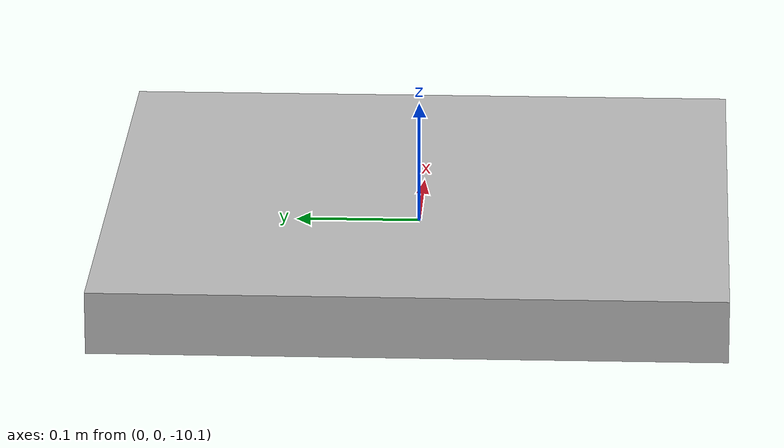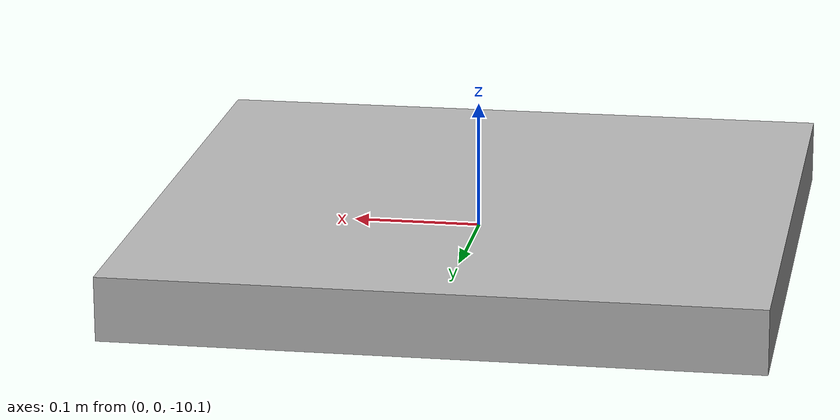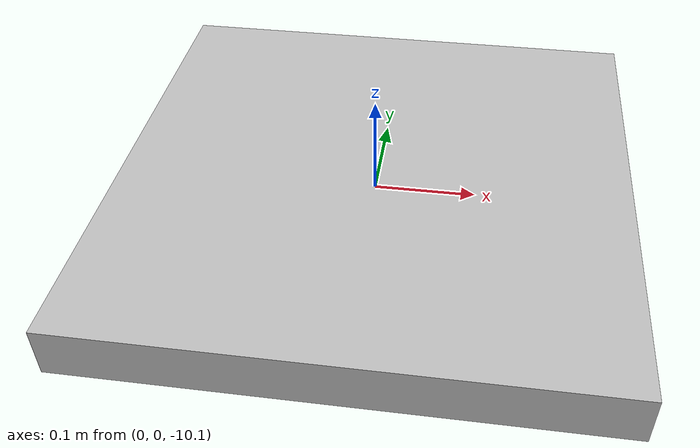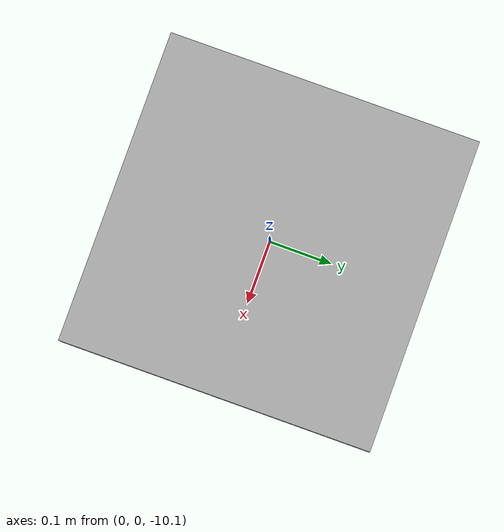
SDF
<?xml version="1.0"?>
<sdf version="1.7">
<world name="w">
  <model name="bin_model">
    <!--
    Axes:
      +X - Pointing towards front
      +Y - Pointing to left side
      +Z - Up
    Origin:
      (0, 0, 0) at the center bottom of the bin
    -->
    <link name="bin_base">
      <inertial>
        <mass>18.70</mass>
        <inertia>
          <ixx>1.0</ixx><ixy>0</ixy><ixz>0</ixz>
          <iyy>1.0</iyy><iyz>0</iyz><izz>1.0</izz>
        </inertia>
      </inertial>

      <!--bottom-->
      <visual name="visual">
        <pose> -0.0 -0.0 -10.1 0 0 0</pose>
        <geometry>
          <box>
            <size>0.5 0.5 0.05</size>
          </box>
        </geometry>
      </visual>
      <collision name="bottom">
        <pose>-0.0 -0.0 -10.1 0 0 0</pose>
        <geometry>
          <box>
            <size>0.5 0.5 0.05</size>
          </box>
        </geometry>
    </collision>

    </link>
</model>
</world>
</sdf>
